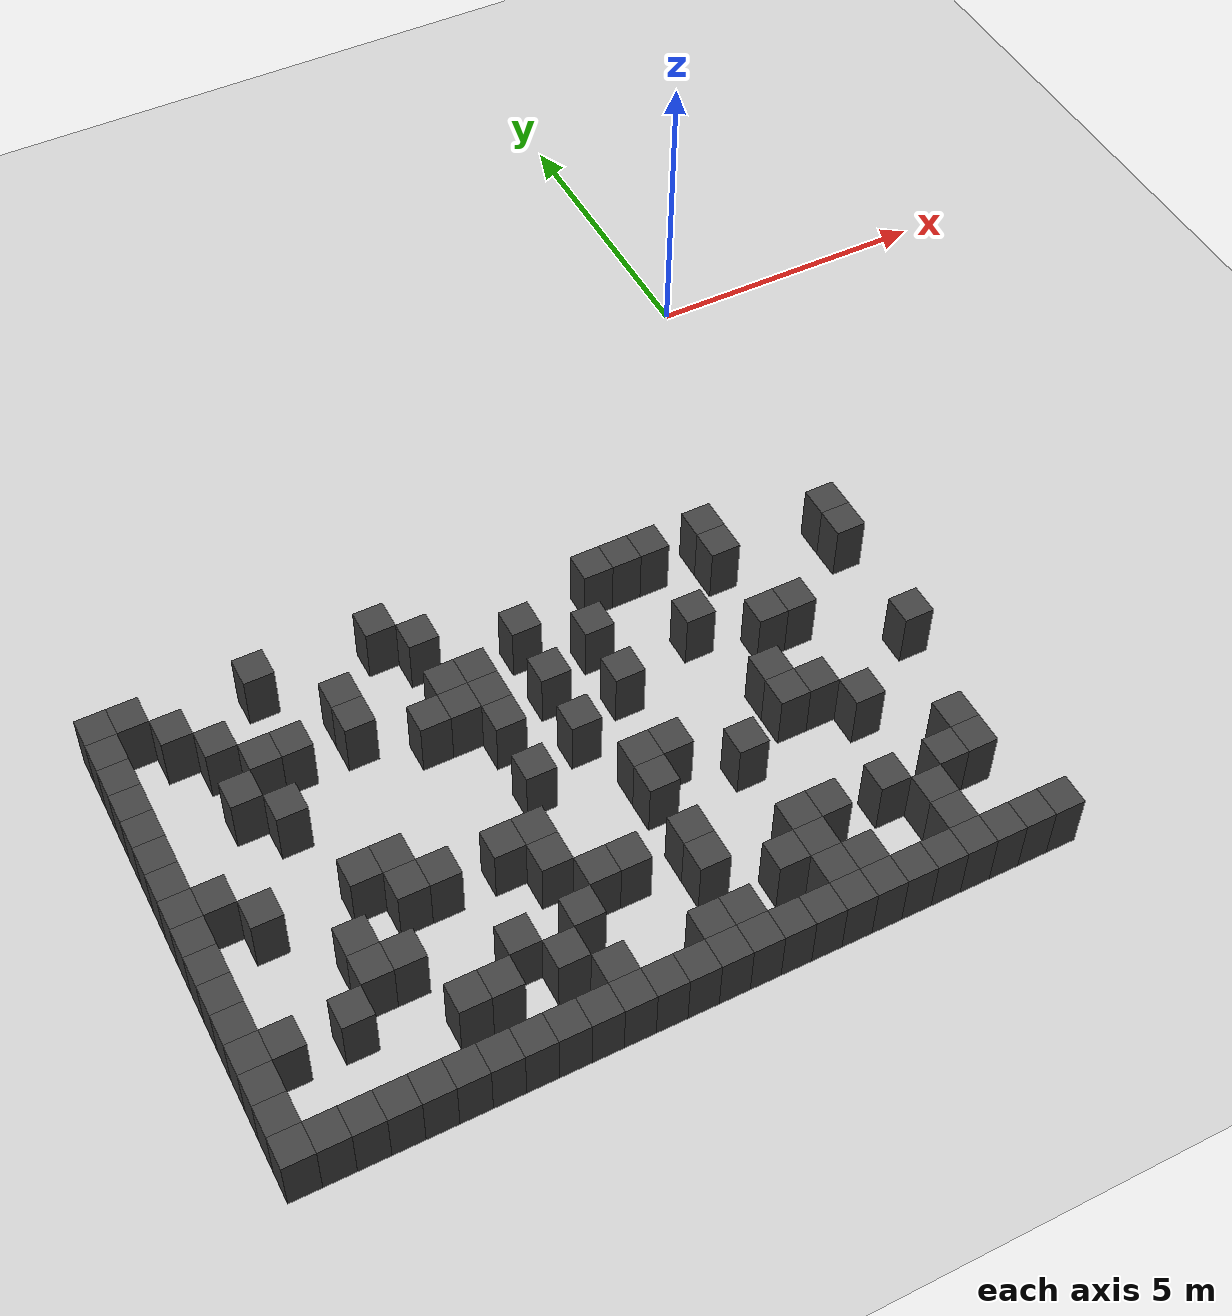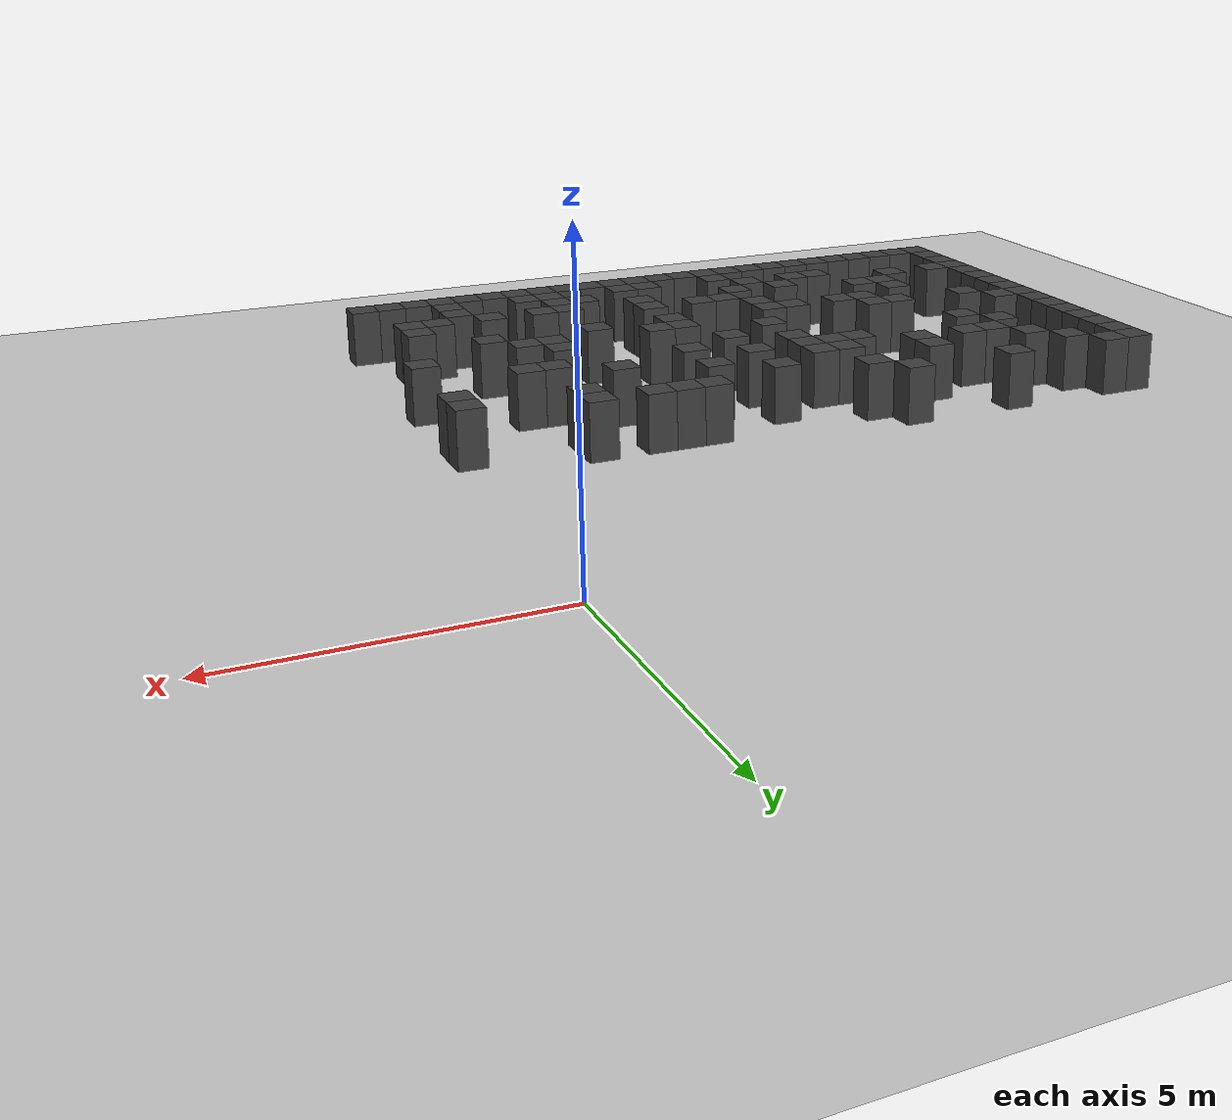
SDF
<sdf version="1.7">
 <world name="map_4822">
  <model name="ground_plane">
   <static>true</static>
   <link name="link">
    <collision name="collision">
     <geometry><plane><normal>0 0 1</normal><size>200 200</size></plane></geometry>
    </collision>
    <visual name="visual">
     <geometry><plane><normal>0 0 1</normal><size>200 200</size></plane></geometry>
     <material><ambient>0.8 0.8 0.8 1</ambient><diffuse>0.8 0.8 0.8 1</diffuse></material>
    </visual>
   </link>
  </model>
  <model name="maze_environment">
   <static>true</static>
   <link name="wall_477">
    <pose>-12.250 -4.750 0.500 0 0 0</pose>
    <collision name="col"><geometry><box><size>0.5 0.5 1.0</size></box></geometry></collision>
    <visual name="vis">
     <geometry><box><size>0.5 0.5 1.0</size></box></geometry>
     <material><ambient>0.15 0.15 0.15 1</ambient><diffuse>0.25 0.25 0.25 1</diffuse></material>
    </visual>
   </link>
   <link name="wall_478">
    <pose>-11.750 -4.750 0.500 0 0 0</pose>
    <collision name="col"><geometry><box><size>0.5 0.5 1.0</size></box></geometry></collision>
    <visual name="vis">
     <geometry><box><size>0.5 0.5 1.0</size></box></geometry>
     <material><ambient>0.15 0.15 0.15 1</ambient><diffuse>0.25 0.25 0.25 1</diffuse></material>
    </visual>
   </link>
   <link name="wall_479">
    <pose>-9.750 -4.750 0.500 0 0 0</pose>
    <collision name="col"><geometry><box><size>0.5 0.5 1.0</size></box></geometry></collision>
    <visual name="vis">
     <geometry><box><size>0.5 0.5 1.0</size></box></geometry>
     <material><ambient>0.15 0.15 0.15 1</ambient><diffuse>0.25 0.25 0.25 1</diffuse></material>
    </visual>
   </link>
   <link name="wall_480">
    <pose>-7.750 -4.750 0.500 0 0 0</pose>
    <collision name="col"><geometry><box><size>0.5 0.5 1.0</size></box></geometry></collision>
    <visual name="vis">
     <geometry><box><size>0.5 0.5 1.0</size></box></geometry>
     <material><ambient>0.15 0.15 0.15 1</ambient><diffuse>0.25 0.25 0.25 1</diffuse></material>
    </visual>
   </link>
   <link name="wall_491">
    <pose>-12.250 -5.250 0.500 0 0 0</pose>
    <collision name="col"><geometry><box><size>0.5 0.5 1.0</size></box></geometry></collision>
    <visual name="vis">
     <geometry><box><size>0.5 0.5 1.0</size></box></geometry>
     <material><ambient>0.15 0.15 0.15 1</ambient><diffuse>0.25 0.25 0.25 1</diffuse></material>
    </visual>
   </link>
   <link name="wall_492">
    <pose>-11.250 -5.250 0.500 0 0 0</pose>
    <collision name="col"><geometry><box><size>0.5 0.5 1.0</size></box></geometry></collision>
    <visual name="vis">
     <geometry><box><size>0.5 0.5 1.0</size></box></geometry>
     <material><ambient>0.15 0.15 0.15 1</ambient><diffuse>0.25 0.25 0.25 1</diffuse></material>
    </visual>
   </link>
   <link name="wall_493">
    <pose>-7.250 -5.250 0.500 0 0 0</pose>
    <collision name="col"><geometry><box><size>0.5 0.5 1.0</size></box></geometry></collision>
    <visual name="vis">
     <geometry><box><size>0.5 0.5 1.0</size></box></geometry>
     <material><ambient>0.15 0.15 0.15 1</ambient><diffuse>0.25 0.25 0.25 1</diffuse></material>
    </visual>
   </link>
   <link name="wall_494">
    <pose>-4.250 -5.250 0.500 0 0 0</pose>
    <collision name="col"><geometry><box><size>0.5 0.5 1.0</size></box></geometry></collision>
    <visual name="vis">
     <geometry><box><size>0.5 0.5 1.0</size></box></geometry>
     <material><ambient>0.15 0.15 0.15 1</ambient><diffuse>0.25 0.25 0.25 1</diffuse></material>
    </visual>
   </link>
   <link name="wall_495">
    <pose>-3.750 -5.250 0.500 0 0 0</pose>
    <collision name="col"><geometry><box><size>0.5 0.5 1.0</size></box></geometry></collision>
    <visual name="vis">
     <geometry><box><size>0.5 0.5 1.0</size></box></geometry>
     <material><ambient>0.15 0.15 0.15 1</ambient><diffuse>0.25 0.25 0.25 1</diffuse></material>
    </visual>
   </link>
   <link name="wall_496">
    <pose>-3.250 -5.250 0.500 0 0 0</pose>
    <collision name="col"><geometry><box><size>0.5 0.5 1.0</size></box></geometry></collision>
    <visual name="vis">
     <geometry><box><size>0.5 0.5 1.0</size></box></geometry>
     <material><ambient>0.15 0.15 0.15 1</ambient><diffuse>0.25 0.25 0.25 1</diffuse></material>
    </visual>
   </link>
   <link name="wall_497">
    <pose>-2.250 -5.250 0.500 0 0 0</pose>
    <collision name="col"><geometry><box><size>0.5 0.5 1.0</size></box></geometry></collision>
    <visual name="vis">
     <geometry><box><size>0.5 0.5 1.0</size></box></geometry>
     <material><ambient>0.15 0.15 0.15 1</ambient><diffuse>0.25 0.25 0.25 1</diffuse></material>
    </visual>
   </link>
   <link name="wall_502">
    <pose>-12.250 -5.750 0.500 0 0 0</pose>
    <collision name="col"><geometry><box><size>0.5 0.5 1.0</size></box></geometry></collision>
    <visual name="vis">
     <geometry><box><size>0.5 0.5 1.0</size></box></geometry>
     <material><ambient>0.15 0.15 0.15 1</ambient><diffuse>0.25 0.25 0.25 1</diffuse></material>
    </visual>
   </link>
   <link name="wall_503">
    <pose>-10.750 -5.750 0.500 0 0 0</pose>
    <collision name="col"><geometry><box><size>0.5 0.5 1.0</size></box></geometry></collision>
    <visual name="vis">
     <geometry><box><size>0.5 0.5 1.0</size></box></geometry>
     <material><ambient>0.15 0.15 0.15 1</ambient><diffuse>0.25 0.25 0.25 1</diffuse></material>
    </visual>
   </link>
   <link name="wall_504">
    <pose>-8.750 -5.750 0.500 0 0 0</pose>
    <collision name="col"><geometry><box><size>0.5 0.5 1.0</size></box></geometry></collision>
    <visual name="vis">
     <geometry><box><size>0.5 0.5 1.0</size></box></geometry>
     <material><ambient>0.15 0.15 0.15 1</ambient><diffuse>0.25 0.25 0.25 1</diffuse></material>
    </visual>
   </link>
   <link name="wall_505">
    <pose>-5.750 -5.750 0.500 0 0 0</pose>
    <collision name="col"><geometry><box><size>0.5 0.5 1.0</size></box></geometry></collision>
    <visual name="vis">
     <geometry><box><size>0.5 0.5 1.0</size></box></geometry>
     <material><ambient>0.15 0.15 0.15 1</ambient><diffuse>0.25 0.25 0.25 1</diffuse></material>
    </visual>
   </link>
   <link name="wall_506">
    <pose>-2.250 -5.750 0.500 0 0 0</pose>
    <collision name="col"><geometry><box><size>0.5 0.5 1.0</size></box></geometry></collision>
    <visual name="vis">
     <geometry><box><size>0.5 0.5 1.0</size></box></geometry>
     <material><ambient>0.15 0.15 0.15 1</ambient><diffuse>0.25 0.25 0.25 1</diffuse></material>
    </visual>
   </link>
   <link name="wall_507">
    <pose>-0.250 -5.750 0.500 0 0 0</pose>
    <collision name="col"><geometry><box><size>0.5 0.5 1.0</size></box></geometry></collision>
    <visual name="vis">
     <geometry><box><size>0.5 0.5 1.0</size></box></geometry>
     <material><ambient>0.15 0.15 0.15 1</ambient><diffuse>0.25 0.25 0.25 1</diffuse></material>
    </visual>
   </link>
   <link name="wall_513">
    <pose>-12.250 -6.250 0.500 0 0 0</pose>
    <collision name="col"><geometry><box><size>0.5 0.5 1.0</size></box></geometry></collision>
    <visual name="vis">
     <geometry><box><size>0.5 0.5 1.0</size></box></geometry>
     <material><ambient>0.15 0.15 0.15 1</ambient><diffuse>0.25 0.25 0.25 1</diffuse></material>
    </visual>
   </link>
   <link name="wall_514">
    <pose>-10.250 -6.250 0.500 0 0 0</pose>
    <collision name="col"><geometry><box><size>0.5 0.5 1.0</size></box></geometry></collision>
    <visual name="vis">
     <geometry><box><size>0.5 0.5 1.0</size></box></geometry>
     <material><ambient>0.15 0.15 0.15 1</ambient><diffuse>0.25 0.25 0.25 1</diffuse></material>
    </visual>
   </link>
   <link name="wall_515">
    <pose>-9.750 -6.250 0.500 0 0 0</pose>
    <collision name="col"><geometry><box><size>0.5 0.5 1.0</size></box></geometry></collision>
    <visual name="vis">
     <geometry><box><size>0.5 0.5 1.0</size></box></geometry>
     <material><ambient>0.15 0.15 0.15 1</ambient><diffuse>0.25 0.25 0.25 1</diffuse></material>
    </visual>
   </link>
   <link name="wall_516">
    <pose>-8.750 -6.250 0.500 0 0 0</pose>
    <collision name="col"><geometry><box><size>0.5 0.5 1.0</size></box></geometry></collision>
    <visual name="vis">
     <geometry><box><size>0.5 0.5 1.0</size></box></geometry>
     <material><ambient>0.15 0.15 0.15 1</ambient><diffuse>0.25 0.25 0.25 1</diffuse></material>
    </visual>
   </link>
   <link name="wall_517">
    <pose>-7.250 -6.250 0.500 0 0 0</pose>
    <collision name="col"><geometry><box><size>0.5 0.5 1.0</size></box></geometry></collision>
    <visual name="vis">
     <geometry><box><size>0.5 0.5 1.0</size></box></geometry>
     <material><ambient>0.15 0.15 0.15 1</ambient><diffuse>0.25 0.25 0.25 1</diffuse></material>
    </visual>
   </link>
   <link name="wall_518">
    <pose>-6.750 -6.250 0.500 0 0 0</pose>
    <collision name="col"><geometry><box><size>0.5 0.5 1.0</size></box></geometry></collision>
    <visual name="vis">
     <geometry><box><size>0.5 0.5 1.0</size></box></geometry>
     <material><ambient>0.15 0.15 0.15 1</ambient><diffuse>0.25 0.25 0.25 1</diffuse></material>
    </visual>
   </link>
   <link name="wall_519">
    <pose>-4.750 -6.250 0.500 0 0 0</pose>
    <collision name="col"><geometry><box><size>0.5 0.5 1.0</size></box></geometry></collision>
    <visual name="vis">
     <geometry><box><size>0.5 0.5 1.0</size></box></geometry>
     <material><ambient>0.15 0.15 0.15 1</ambient><diffuse>0.25 0.25 0.25 1</diffuse></material>
    </visual>
   </link>
   <link name="wall_520">
    <pose>-0.250 -6.250 0.500 0 0 0</pose>
    <collision name="col"><geometry><box><size>0.5 0.5 1.0</size></box></geometry></collision>
    <visual name="vis">
     <geometry><box><size>0.5 0.5 1.0</size></box></geometry>
     <material><ambient>0.15 0.15 0.15 1</ambient><diffuse>0.25 0.25 0.25 1</diffuse></material>
    </visual>
   </link>
   <link name="wall_526">
    <pose>-12.250 -6.750 0.500 0 0 0</pose>
    <collision name="col"><geometry><box><size>0.5 0.5 1.0</size></box></geometry></collision>
    <visual name="vis">
     <geometry><box><size>0.5 0.5 1.0</size></box></geometry>
     <material><ambient>0.15 0.15 0.15 1</ambient><diffuse>0.25 0.25 0.25 1</diffuse></material>
    </visual>
   </link>
   <link name="wall_527">
    <pose>-10.750 -6.750 0.500 0 0 0</pose>
    <collision name="col"><geometry><box><size>0.5 0.5 1.0</size></box></geometry></collision>
    <visual name="vis">
     <geometry><box><size>0.5 0.5 1.0</size></box></geometry>
     <material><ambient>0.15 0.15 0.15 1</ambient><diffuse>0.25 0.25 0.25 1</diffuse></material>
    </visual>
   </link>
   <link name="wall_528">
    <pose>-7.750 -6.750 0.500 0 0 0</pose>
    <collision name="col"><geometry><box><size>0.5 0.5 1.0</size></box></geometry></collision>
    <visual name="vis">
     <geometry><box><size>0.5 0.5 1.0</size></box></geometry>
     <material><ambient>0.15 0.15 0.15 1</ambient><diffuse>0.25 0.25 0.25 1</diffuse></material>
    </visual>
   </link>
   <link name="wall_529">
    <pose>-7.250 -6.750 0.500 0 0 0</pose>
    <collision name="col"><geometry><box><size>0.5 0.5 1.0</size></box></geometry></collision>
    <visual name="vis">
     <geometry><box><size>0.5 0.5 1.0</size></box></geometry>
     <material><ambient>0.15 0.15 0.15 1</ambient><diffuse>0.25 0.25 0.25 1</diffuse></material>
    </visual>
   </link>
   <link name="wall_530">
    <pose>-6.750 -6.750 0.500 0 0 0</pose>
    <collision name="col"><geometry><box><size>0.5 0.5 1.0</size></box></geometry></collision>
    <visual name="vis">
     <geometry><box><size>0.5 0.5 1.0</size></box></geometry>
     <material><ambient>0.15 0.15 0.15 1</ambient><diffuse>0.25 0.25 0.25 1</diffuse></material>
    </visual>
   </link>
   <link name="wall_531">
    <pose>-5.750 -6.750 0.500 0 0 0</pose>
    <collision name="col"><geometry><box><size>0.5 0.5 1.0</size></box></geometry></collision>
    <visual name="vis">
     <geometry><box><size>0.5 0.5 1.0</size></box></geometry>
     <material><ambient>0.15 0.15 0.15 1</ambient><diffuse>0.25 0.25 0.25 1</diffuse></material>
    </visual>
   </link>
   <link name="wall_532">
    <pose>-3.250 -6.750 0.500 0 0 0</pose>
    <collision name="col"><geometry><box><size>0.5 0.5 1.0</size></box></geometry></collision>
    <visual name="vis">
     <geometry><box><size>0.5 0.5 1.0</size></box></geometry>
     <material><ambient>0.15 0.15 0.15 1</ambient><diffuse>0.25 0.25 0.25 1</diffuse></material>
    </visual>
   </link>
   <link name="wall_540">
    <pose>-12.250 -7.250 0.500 0 0 0</pose>
    <collision name="col"><geometry><box><size>0.5 0.5 1.0</size></box></geometry></collision>
    <visual name="vis">
     <geometry><box><size>0.5 0.5 1.0</size></box></geometry>
     <material><ambient>0.15 0.15 0.15 1</ambient><diffuse>0.25 0.25 0.25 1</diffuse></material>
    </visual>
   </link>
   <link name="wall_541">
    <pose>-10.250 -7.250 0.500 0 0 0</pose>
    <collision name="col"><geometry><box><size>0.5 0.5 1.0</size></box></geometry></collision>
    <visual name="vis">
     <geometry><box><size>0.5 0.5 1.0</size></box></geometry>
     <material><ambient>0.15 0.15 0.15 1</ambient><diffuse>0.25 0.25 0.25 1</diffuse></material>
    </visual>
   </link>
   <link name="wall_542">
    <pose>-6.750 -7.250 0.500 0 0 0</pose>
    <collision name="col"><geometry><box><size>0.5 0.5 1.0</size></box></geometry></collision>
    <visual name="vis">
     <geometry><box><size>0.5 0.5 1.0</size></box></geometry>
     <material><ambient>0.15 0.15 0.15 1</ambient><diffuse>0.25 0.25 0.25 1</diffuse></material>
    </visual>
   </link>
   <link name="wall_543">
    <pose>-4.750 -7.250 0.500 0 0 0</pose>
    <collision name="col"><geometry><box><size>0.5 0.5 1.0</size></box></geometry></collision>
    <visual name="vis">
     <geometry><box><size>0.5 0.5 1.0</size></box></geometry>
     <material><ambient>0.15 0.15 0.15 1</ambient><diffuse>0.25 0.25 0.25 1</diffuse></material>
    </visual>
   </link>
   <link name="wall_544">
    <pose>-2.250 -7.250 0.500 0 0 0</pose>
    <collision name="col"><geometry><box><size>0.5 0.5 1.0</size></box></geometry></collision>
    <visual name="vis">
     <geometry><box><size>0.5 0.5 1.0</size></box></geometry>
     <material><ambient>0.15 0.15 0.15 1</ambient><diffuse>0.25 0.25 0.25 1</diffuse></material>
    </visual>
   </link>
   <link name="wall_545">
    <pose>-1.750 -7.250 0.500 0 0 0</pose>
    <collision name="col"><geometry><box><size>0.5 0.5 1.0</size></box></geometry></collision>
    <visual name="vis">
     <geometry><box><size>0.5 0.5 1.0</size></box></geometry>
     <material><ambient>0.15 0.15 0.15 1</ambient><diffuse>0.25 0.25 0.25 1</diffuse></material>
    </visual>
   </link>
   <link name="wall_553">
    <pose>-12.250 -7.750 0.500 0 0 0</pose>
    <collision name="col"><geometry><box><size>0.5 0.5 1.0</size></box></geometry></collision>
    <visual name="vis">
     <geometry><box><size>0.5 0.5 1.0</size></box></geometry>
     <material><ambient>0.15 0.15 0.15 1</ambient><diffuse>0.25 0.25 0.25 1</diffuse></material>
    </visual>
   </link>
   <link name="wall_554">
    <pose>-5.750 -7.750 0.500 0 0 0</pose>
    <collision name="col"><geometry><box><size>0.5 0.5 1.0</size></box></geometry></collision>
    <visual name="vis">
     <geometry><box><size>0.5 0.5 1.0</size></box></geometry>
     <material><ambient>0.15 0.15 0.15 1</ambient><diffuse>0.25 0.25 0.25 1</diffuse></material>
    </visual>
   </link>
   <link name="wall_561">
    <pose>-12.250 -8.250 0.500 0 0 0</pose>
    <collision name="col"><geometry><box><size>0.5 0.5 1.0</size></box></geometry></collision>
    <visual name="vis">
     <geometry><box><size>0.5 0.5 1.0</size></box></geometry>
     <material><ambient>0.15 0.15 0.15 1</ambient><diffuse>0.25 0.25 0.25 1</diffuse></material>
    </visual>
   </link>
   <link name="wall_562">
    <pose>-11.750 -8.250 0.500 0 0 0</pose>
    <collision name="col"><geometry><box><size>0.5 0.5 1.0</size></box></geometry></collision>
    <visual name="vis">
     <geometry><box><size>0.5 0.5 1.0</size></box></geometry>
     <material><ambient>0.15 0.15 0.15 1</ambient><diffuse>0.25 0.25 0.25 1</diffuse></material>
    </visual>
   </link>
   <link name="wall_563">
    <pose>-6.750 -8.250 0.500 0 0 0</pose>
    <collision name="col"><geometry><box><size>0.5 0.5 1.0</size></box></geometry></collision>
    <visual name="vis">
     <geometry><box><size>0.5 0.5 1.0</size></box></geometry>
     <material><ambient>0.15 0.15 0.15 1</ambient><diffuse>0.25 0.25 0.25 1</diffuse></material>
    </visual>
   </link>
   <link name="wall_564">
    <pose>-2.750 -8.250 0.500 0 0 0</pose>
    <collision name="col"><geometry><box><size>0.5 0.5 1.0</size></box></geometry></collision>
    <visual name="vis">
     <geometry><box><size>0.5 0.5 1.0</size></box></geometry>
     <material><ambient>0.15 0.15 0.15 1</ambient><diffuse>0.25 0.25 0.25 1</diffuse></material>
    </visual>
   </link>
   <link name="wall_565">
    <pose>-0.250 -8.250 0.500 0 0 0</pose>
    <collision name="col"><geometry><box><size>0.5 0.5 1.0</size></box></geometry></collision>
    <visual name="vis">
     <geometry><box><size>0.5 0.5 1.0</size></box></geometry>
     <material><ambient>0.15 0.15 0.15 1</ambient><diffuse>0.25 0.25 0.25 1</diffuse></material>
    </visual>
   </link>
   <link name="wall_572">
    <pose>-12.250 -8.750 0.500 0 0 0</pose>
    <collision name="col"><geometry><box><size>0.5 0.5 1.0</size></box></geometry></collision>
    <visual name="vis">
     <geometry><box><size>0.5 0.5 1.0</size></box></geometry>
     <material><ambient>0.15 0.15 0.15 1</ambient><diffuse>0.25 0.25 0.25 1</diffuse></material>
    </visual>
   </link>
   <link name="wall_573">
    <pose>-11.250 -8.750 0.500 0 0 0</pose>
    <collision name="col"><geometry><box><size>0.5 0.5 1.0</size></box></geometry></collision>
    <visual name="vis">
     <geometry><box><size>0.5 0.5 1.0</size></box></geometry>
     <material><ambient>0.15 0.15 0.15 1</ambient><diffuse>0.25 0.25 0.25 1</diffuse></material>
    </visual>
   </link>
   <link name="wall_574">
    <pose>-9.750 -8.750 0.500 0 0 0</pose>
    <collision name="col"><geometry><box><size>0.5 0.5 1.0</size></box></geometry></collision>
    <visual name="vis">
     <geometry><box><size>0.5 0.5 1.0</size></box></geometry>
     <material><ambient>0.15 0.15 0.15 1</ambient><diffuse>0.25 0.25 0.25 1</diffuse></material>
    </visual>
   </link>
   <link name="wall_575">
    <pose>-9.250 -8.750 0.500 0 0 0</pose>
    <collision name="col"><geometry><box><size>0.5 0.5 1.0</size></box></geometry></collision>
    <visual name="vis">
     <geometry><box><size>0.5 0.5 1.0</size></box></geometry>
     <material><ambient>0.15 0.15 0.15 1</ambient><diffuse>0.25 0.25 0.25 1</diffuse></material>
    </visual>
   </link>
   <link name="wall_576">
    <pose>-5.250 -8.750 0.500 0 0 0</pose>
    <collision name="col"><geometry><box><size>0.5 0.5 1.0</size></box></geometry></collision>
    <visual name="vis">
     <geometry><box><size>0.5 0.5 1.0</size></box></geometry>
     <material><ambient>0.15 0.15 0.15 1</ambient><diffuse>0.25 0.25 0.25 1</diffuse></material>
    </visual>
   </link>
   <link name="wall_577">
    <pose>-4.750 -8.750 0.500 0 0 0</pose>
    <collision name="col"><geometry><box><size>0.5 0.5 1.0</size></box></geometry></collision>
    <visual name="vis">
     <geometry><box><size>0.5 0.5 1.0</size></box></geometry>
     <material><ambient>0.15 0.15 0.15 1</ambient><diffuse>0.25 0.25 0.25 1</diffuse></material>
    </visual>
   </link>
   <link name="wall_578">
    <pose>-2.750 -8.750 0.500 0 0 0</pose>
    <collision name="col"><geometry><box><size>0.5 0.5 1.0</size></box></geometry></collision>
    <visual name="vis">
     <geometry><box><size>0.5 0.5 1.0</size></box></geometry>
     <material><ambient>0.15 0.15 0.15 1</ambient><diffuse>0.25 0.25 0.25 1</diffuse></material>
    </visual>
   </link>
   <link name="wall_579">
    <pose>-2.250 -8.750 0.500 0 0 0</pose>
    <collision name="col"><geometry><box><size>0.5 0.5 1.0</size></box></geometry></collision>
    <visual name="vis">
     <geometry><box><size>0.5 0.5 1.0</size></box></geometry>
     <material><ambient>0.15 0.15 0.15 1</ambient><diffuse>0.25 0.25 0.25 1</diffuse></material>
    </visual>
   </link>
   <link name="wall_590">
    <pose>-12.250 -9.250 0.500 0 0 0</pose>
    <collision name="col"><geometry><box><size>0.5 0.5 1.0</size></box></geometry></collision>
    <visual name="vis">
     <geometry><box><size>0.5 0.5 1.0</size></box></geometry>
     <material><ambient>0.15 0.15 0.15 1</ambient><diffuse>0.25 0.25 0.25 1</diffuse></material>
    </visual>
   </link>
   <link name="wall_591">
    <pose>-9.250 -9.250 0.500 0 0 0</pose>
    <collision name="col"><geometry><box><size>0.5 0.5 1.0</size></box></geometry></collision>
    <visual name="vis">
     <geometry><box><size>0.5 0.5 1.0</size></box></geometry>
     <material><ambient>0.15 0.15 0.15 1</ambient><diffuse>0.25 0.25 0.25 1</diffuse></material>
    </visual>
   </link>
   <link name="wall_592">
    <pose>-8.750 -9.250 0.500 0 0 0</pose>
    <collision name="col"><geometry><box><size>0.5 0.5 1.0</size></box></geometry></collision>
    <visual name="vis">
     <geometry><box><size>0.5 0.5 1.0</size></box></geometry>
     <material><ambient>0.15 0.15 0.15 1</ambient><diffuse>0.25 0.25 0.25 1</diffuse></material>
    </visual>
   </link>
   <link name="wall_593">
    <pose>-7.750 -9.250 0.500 0 0 0</pose>
    <collision name="col"><geometry><box><size>0.5 0.5 1.0</size></box></geometry></collision>
    <visual name="vis">
     <geometry><box><size>0.5 0.5 1.0</size></box></geometry>
     <material><ambient>0.15 0.15 0.15 1</ambient><diffuse>0.25 0.25 0.25 1</diffuse></material>
    </visual>
   </link>
   <link name="wall_594">
    <pose>-7.250 -9.250 0.500 0 0 0</pose>
    <collision name="col"><geometry><box><size>0.5 0.5 1.0</size></box></geometry></collision>
    <visual name="vis">
     <geometry><box><size>0.5 0.5 1.0</size></box></geometry>
     <material><ambient>0.15 0.15 0.15 1</ambient><diffuse>0.25 0.25 0.25 1</diffuse></material>
    </visual>
   </link>
   <link name="wall_595">
    <pose>-5.250 -9.250 0.500 0 0 0</pose>
    <collision name="col"><geometry><box><size>0.5 0.5 1.0</size></box></geometry></collision>
    <visual name="vis">
     <geometry><box><size>0.5 0.5 1.0</size></box></geometry>
     <material><ambient>0.15 0.15 0.15 1</ambient><diffuse>0.25 0.25 0.25 1</diffuse></material>
    </visual>
   </link>
   <link name="wall_596">
    <pose>-3.750 -9.250 0.500 0 0 0</pose>
    <collision name="col"><geometry><box><size>0.5 0.5 1.0</size></box></geometry></collision>
    <visual name="vis">
     <geometry><box><size>0.5 0.5 1.0</size></box></geometry>
     <material><ambient>0.15 0.15 0.15 1</ambient><diffuse>0.25 0.25 0.25 1</diffuse></material>
    </visual>
   </link>
   <link name="wall_597">
    <pose>-1.750 -9.250 0.500 0 0 0</pose>
    <collision name="col"><geometry><box><size>0.5 0.5 1.0</size></box></geometry></collision>
    <visual name="vis">
     <geometry><box><size>0.5 0.5 1.0</size></box></geometry>
     <material><ambient>0.15 0.15 0.15 1</ambient><diffuse>0.25 0.25 0.25 1</diffuse></material>
    </visual>
   </link>
   <link name="wall_603">
    <pose>-12.250 -9.750 0.500 0 0 0</pose>
    <collision name="col"><geometry><box><size>0.5 0.5 1.0</size></box></geometry></collision>
    <visual name="vis">
     <geometry><box><size>0.5 0.5 1.0</size></box></geometry>
     <material><ambient>0.15 0.15 0.15 1</ambient><diffuse>0.25 0.25 0.25 1</diffuse></material>
    </visual>
   </link>
   <link name="wall_604">
    <pose>-10.250 -9.750 0.500 0 0 0</pose>
    <collision name="col"><geometry><box><size>0.5 0.5 1.0</size></box></geometry></collision>
    <visual name="vis">
     <geometry><box><size>0.5 0.5 1.0</size></box></geometry>
     <material><ambient>0.15 0.15 0.15 1</ambient><diffuse>0.25 0.25 0.25 1</diffuse></material>
    </visual>
   </link>
   <link name="wall_605">
    <pose>-7.250 -9.750 0.500 0 0 0</pose>
    <collision name="col"><geometry><box><size>0.5 0.5 1.0</size></box></geometry></collision>
    <visual name="vis">
     <geometry><box><size>0.5 0.5 1.0</size></box></geometry>
     <material><ambient>0.15 0.15 0.15 1</ambient><diffuse>0.25 0.25 0.25 1</diffuse></material>
    </visual>
   </link>
   <link name="wall_612">
    <pose>-12.250 -10.250 0.500 0 0 0</pose>
    <collision name="col"><geometry><box><size>0.5 0.5 1.0</size></box></geometry></collision>
    <visual name="vis">
     <geometry><box><size>0.5 0.5 1.0</size></box></geometry>
     <material><ambient>0.15 0.15 0.15 1</ambient><diffuse>0.25 0.25 0.25 1</diffuse></material>
    </visual>
   </link>
   <link name="wall_613">
    <pose>-10.250 -10.250 0.500 0 0 0</pose>
    <collision name="col"><geometry><box><size>0.5 0.5 1.0</size></box></geometry></collision>
    <visual name="vis">
     <geometry><box><size>0.5 0.5 1.0</size></box></geometry>
     <material><ambient>0.15 0.15 0.15 1</ambient><diffuse>0.25 0.25 0.25 1</diffuse></material>
    </visual>
   </link>
   <link name="wall_614">
    <pose>-9.750 -10.250 0.500 0 0 0</pose>
    <collision name="col"><geometry><box><size>0.5 0.5 1.0</size></box></geometry></collision>
    <visual name="vis">
     <geometry><box><size>0.5 0.5 1.0</size></box></geometry>
     <material><ambient>0.15 0.15 0.15 1</ambient><diffuse>0.25 0.25 0.25 1</diffuse></material>
    </visual>
   </link>
   <link name="wall_615">
    <pose>-6.750 -10.250 0.500 0 0 0</pose>
    <collision name="col"><geometry><box><size>0.5 0.5 1.0</size></box></geometry></collision>
    <visual name="vis">
     <geometry><box><size>0.5 0.5 1.0</size></box></geometry>
     <material><ambient>0.15 0.15 0.15 1</ambient><diffuse>0.25 0.25 0.25 1</diffuse></material>
    </visual>
   </link>
   <link name="wall_616">
    <pose>-6.250 -10.250 0.500 0 0 0</pose>
    <collision name="col"><geometry><box><size>0.5 0.5 1.0</size></box></geometry></collision>
    <visual name="vis">
     <geometry><box><size>0.5 0.5 1.0</size></box></geometry>
     <material><ambient>0.15 0.15 0.15 1</ambient><diffuse>0.25 0.25 0.25 1</diffuse></material>
    </visual>
   </link>
   <link name="wall_617">
    <pose>-5.250 -10.250 0.500 0 0 0</pose>
    <collision name="col"><geometry><box><size>0.5 0.5 1.0</size></box></geometry></collision>
    <visual name="vis">
     <geometry><box><size>0.5 0.5 1.0</size></box></geometry>
     <material><ambient>0.15 0.15 0.15 1</ambient><diffuse>0.25 0.25 0.25 1</diffuse></material>
    </visual>
   </link>
   <link name="wall_618">
    <pose>-0.750 -10.250 0.500 0 0 0</pose>
    <collision name="col"><geometry><box><size>0.5 0.5 1.0</size></box></geometry></collision>
    <visual name="vis">
     <geometry><box><size>0.5 0.5 1.0</size></box></geometry>
     <material><ambient>0.15 0.15 0.15 1</ambient><diffuse>0.25 0.25 0.25 1</diffuse></material>
    </visual>
   </link>
   <link name="wall_627">
    <pose>-12.250 -10.750 0.500 0 0 0</pose>
    <collision name="col"><geometry><box><size>0.5 0.5 1.0</size></box></geometry></collision>
    <visual name="vis">
     <geometry><box><size>0.5 0.5 1.0</size></box></geometry>
     <material><ambient>0.15 0.15 0.15 1</ambient><diffuse>0.25 0.25 0.25 1</diffuse></material>
    </visual>
   </link>
   <link name="wall_628">
    <pose>-11.750 -10.750 0.500 0 0 0</pose>
    <collision name="col"><geometry><box><size>0.5 0.5 1.0</size></box></geometry></collision>
    <visual name="vis">
     <geometry><box><size>0.5 0.5 1.0</size></box></geometry>
     <material><ambient>0.15 0.15 0.15 1</ambient><diffuse>0.25 0.25 0.25 1</diffuse></material>
    </visual>
   </link>
   <link name="wall_629">
    <pose>-10.750 -10.750 0.500 0 0 0</pose>
    <collision name="col"><geometry><box><size>0.5 0.5 1.0</size></box></geometry></collision>
    <visual name="vis">
     <geometry><box><size>0.5 0.5 1.0</size></box></geometry>
     <material><ambient>0.15 0.15 0.15 1</ambient><diffuse>0.25 0.25 0.25 1</diffuse></material>
    </visual>
   </link>
   <link name="wall_630">
    <pose>-8.250 -10.750 0.500 0 0 0</pose>
    <collision name="col"><geometry><box><size>0.5 0.5 1.0</size></box></geometry></collision>
    <visual name="vis">
     <geometry><box><size>0.5 0.5 1.0</size></box></geometry>
     <material><ambient>0.15 0.15 0.15 1</ambient><diffuse>0.25 0.25 0.25 1</diffuse></material>
    </visual>
   </link>
   <link name="wall_631">
    <pose>-7.250 -10.750 0.500 0 0 0</pose>
    <collision name="col"><geometry><box><size>0.5 0.5 1.0</size></box></geometry></collision>
    <visual name="vis">
     <geometry><box><size>0.5 0.5 1.0</size></box></geometry>
     <material><ambient>0.15 0.15 0.15 1</ambient><diffuse>0.25 0.25 0.25 1</diffuse></material>
    </visual>
   </link>
   <link name="wall_632">
    <pose>-5.250 -10.750 0.500 0 0 0</pose>
    <collision name="col"><geometry><box><size>0.5 0.5 1.0</size></box></geometry></collision>
    <visual name="vis">
     <geometry><box><size>0.5 0.5 1.0</size></box></geometry>
     <material><ambient>0.15 0.15 0.15 1</ambient><diffuse>0.25 0.25 0.25 1</diffuse></material>
    </visual>
   </link>
   <link name="wall_633">
    <pose>-3.750 -10.750 0.500 0 0 0</pose>
    <collision name="col"><geometry><box><size>0.5 0.5 1.0</size></box></geometry></collision>
    <visual name="vis">
     <geometry><box><size>0.5 0.5 1.0</size></box></geometry>
     <material><ambient>0.15 0.15 0.15 1</ambient><diffuse>0.25 0.25 0.25 1</diffuse></material>
    </visual>
   </link>
   <link name="wall_634">
    <pose>-3.250 -10.750 0.500 0 0 0</pose>
    <collision name="col"><geometry><box><size>0.5 0.5 1.0</size></box></geometry></collision>
    <visual name="vis">
     <geometry><box><size>0.5 0.5 1.0</size></box></geometry>
     <material><ambient>0.15 0.15 0.15 1</ambient><diffuse>0.25 0.25 0.25 1</diffuse></material>
    </visual>
   </link>
   <link name="wall_635">
    <pose>-2.250 -10.750 0.500 0 0 0</pose>
    <collision name="col"><geometry><box><size>0.5 0.5 1.0</size></box></geometry></collision>
    <visual name="vis">
     <geometry><box><size>0.5 0.5 1.0</size></box></geometry>
     <material><ambient>0.15 0.15 0.15 1</ambient><diffuse>0.25 0.25 0.25 1</diffuse></material>
    </visual>
   </link>
   <link name="wall_636">
    <pose>-1.250 -10.750 0.500 0 0 0</pose>
    <collision name="col"><geometry><box><size>0.5 0.5 1.0</size></box></geometry></collision>
    <visual name="vis">
     <geometry><box><size>0.5 0.5 1.0</size></box></geometry>
     <material><ambient>0.15 0.15 0.15 1</ambient><diffuse>0.25 0.25 0.25 1</diffuse></material>
    </visual>
   </link>
   <link name="wall_637">
    <pose>-0.750 -10.750 0.500 0 0 0</pose>
    <collision name="col"><geometry><box><size>0.5 0.5 1.0</size></box></geometry></collision>
    <visual name="vis">
     <geometry><box><size>0.5 0.5 1.0</size></box></geometry>
     <material><ambient>0.15 0.15 0.15 1</ambient><diffuse>0.25 0.25 0.25 1</diffuse></material>
    </visual>
   </link>
   <link name="wall_646">
    <pose>-12.250 -11.250 0.500 0 0 0</pose>
    <collision name="col"><geometry><box><size>0.5 0.5 1.0</size></box></geometry></collision>
    <visual name="vis">
     <geometry><box><size>0.5 0.5 1.0</size></box></geometry>
     <material><ambient>0.15 0.15 0.15 1</ambient><diffuse>0.25 0.25 0.25 1</diffuse></material>
    </visual>
   </link>
   <link name="wall_647">
    <pose>-9.250 -11.250 0.500 0 0 0</pose>
    <collision name="col"><geometry><box><size>0.5 0.5 1.0</size></box></geometry></collision>
    <visual name="vis">
     <geometry><box><size>0.5 0.5 1.0</size></box></geometry>
     <material><ambient>0.15 0.15 0.15 1</ambient><diffuse>0.25 0.25 0.25 1</diffuse></material>
    </visual>
   </link>
   <link name="wall_648">
    <pose>-8.750 -11.250 0.500 0 0 0</pose>
    <collision name="col"><geometry><box><size>0.5 0.5 1.0</size></box></geometry></collision>
    <visual name="vis">
     <geometry><box><size>0.5 0.5 1.0</size></box></geometry>
     <material><ambient>0.15 0.15 0.15 1</ambient><diffuse>0.25 0.25 0.25 1</diffuse></material>
    </visual>
   </link>
   <link name="wall_649">
    <pose>-7.750 -11.250 0.500 0 0 0</pose>
    <collision name="col"><geometry><box><size>0.5 0.5 1.0</size></box></geometry></collision>
    <visual name="vis">
     <geometry><box><size>0.5 0.5 1.0</size></box></geometry>
     <material><ambient>0.15 0.15 0.15 1</ambient><diffuse>0.25 0.25 0.25 1</diffuse></material>
    </visual>
   </link>
   <link name="wall_650">
    <pose>-4.250 -11.250 0.500 0 0 0</pose>
    <collision name="col"><geometry><box><size>0.5 0.5 1.0</size></box></geometry></collision>
    <visual name="vis">
     <geometry><box><size>0.5 0.5 1.0</size></box></geometry>
     <material><ambient>0.15 0.15 0.15 1</ambient><diffuse>0.25 0.25 0.25 1</diffuse></material>
    </visual>
   </link>
   <link name="wall_651">
    <pose>-3.750 -11.250 0.500 0 0 0</pose>
    <collision name="col"><geometry><box><size>0.5 0.5 1.0</size></box></geometry></collision>
    <visual name="vis">
     <geometry><box><size>0.5 0.5 1.0</size></box></geometry>
     <material><ambient>0.15 0.15 0.15 1</ambient><diffuse>0.25 0.25 0.25 1</diffuse></material>
    </visual>
   </link>
   <link name="wall_652">
    <pose>-1.750 -11.250 0.500 0 0 0</pose>
    <collision name="col"><geometry><box><size>0.5 0.5 1.0</size></box></geometry></collision>
    <visual name="vis">
     <geometry><box><size>0.5 0.5 1.0</size></box></geometry>
     <material><ambient>0.15 0.15 0.15 1</ambient><diffuse>0.25 0.25 0.25 1</diffuse></material>
    </visual>
   </link>
   <link name="wall_660">
    <pose>-12.250 -11.750 0.500 0 0 0</pose>
    <collision name="col"><geometry><box><size>0.5 0.5 1.0</size></box></geometry></collision>
    <visual name="vis">
     <geometry><box><size>0.5 0.5 1.0</size></box></geometry>
     <material><ambient>0.15 0.15 0.15 1</ambient><diffuse>0.25 0.25 0.25 1</diffuse></material>
    </visual>
   </link>
   <link name="wall_661">
    <pose>-7.250 -11.750 0.500 0 0 0</pose>
    <collision name="col"><geometry><box><size>0.5 0.5 1.0</size></box></geometry></collision>
    <visual name="vis">
     <geometry><box><size>0.5 0.5 1.0</size></box></geometry>
     <material><ambient>0.15 0.15 0.15 1</ambient><diffuse>0.25 0.25 0.25 1</diffuse></material>
    </visual>
   </link>
   <link name="wall_662">
    <pose>-5.750 -11.750 0.500 0 0 0</pose>
    <collision name="col"><geometry><box><size>0.5 0.5 1.0</size></box></geometry></collision>
    <visual name="vis">
     <geometry><box><size>0.5 0.5 1.0</size></box></geometry>
     <material><ambient>0.15 0.15 0.15 1</ambient><diffuse>0.25 0.25 0.25 1</diffuse></material>
    </visual>
   </link>
   <link name="wall_663">
    <pose>-5.250 -11.750 0.500 0 0 0</pose>
    <collision name="col"><geometry><box><size>0.5 0.5 1.0</size></box></geometry></collision>
    <visual name="vis">
     <geometry><box><size>0.5 0.5 1.0</size></box></geometry>
     <material><ambient>0.15 0.15 0.15 1</ambient><diffuse>0.25 0.25 0.25 1</diffuse></material>
    </visual>
   </link>
   <link name="wall_664">
    <pose>-3.750 -11.750 0.500 0 0 0</pose>
    <collision name="col"><geometry><box><size>0.5 0.5 1.0</size></box></geometry></collision>
    <visual name="vis">
     <geometry><box><size>0.5 0.5 1.0</size></box></geometry>
     <material><ambient>0.15 0.15 0.15 1</ambient><diffuse>0.25 0.25 0.25 1</diffuse></material>
    </visual>
   </link>
   <link name="wall_665">
    <pose>-3.250 -11.750 0.500 0 0 0</pose>
    <collision name="col"><geometry><box><size>0.5 0.5 1.0</size></box></geometry></collision>
    <visual name="vis">
     <geometry><box><size>0.5 0.5 1.0</size></box></geometry>
     <material><ambient>0.15 0.15 0.15 1</ambient><diffuse>0.25 0.25 0.25 1</diffuse></material>
    </visual>
   </link>
   <link name="wall_666">
    <pose>-1.750 -11.750 0.500 0 0 0</pose>
    <collision name="col"><geometry><box><size>0.5 0.5 1.0</size></box></geometry></collision>
    <visual name="vis">
     <geometry><box><size>0.5 0.5 1.0</size></box></geometry>
     <material><ambient>0.15 0.15 0.15 1</ambient><diffuse>0.25 0.25 0.25 1</diffuse></material>
    </visual>
   </link>
   <link name="wall_676">
    <pose>-12.250 -12.250 0.500 0 0 0</pose>
    <collision name="col"><geometry><box><size>0.5 0.5 1.0</size></box></geometry></collision>
    <visual name="vis">
     <geometry><box><size>0.5 0.5 1.0</size></box></geometry>
     <material><ambient>0.15 0.15 0.15 1</ambient><diffuse>0.25 0.25 0.25 1</diffuse></material>
    </visual>
   </link>
   <link name="wall_677">
    <pose>-11.750 -12.250 0.500 0 0 0</pose>
    <collision name="col"><geometry><box><size>0.5 0.5 1.0</size></box></geometry></collision>
    <visual name="vis">
     <geometry><box><size>0.5 0.5 1.0</size></box></geometry>
     <material><ambient>0.15 0.15 0.15 1</ambient><diffuse>0.25 0.25 0.25 1</diffuse></material>
    </visual>
   </link>
   <link name="wall_678">
    <pose>-11.250 -12.250 0.500 0 0 0</pose>
    <collision name="col"><geometry><box><size>0.5 0.5 1.0</size></box></geometry></collision>
    <visual name="vis">
     <geometry><box><size>0.5 0.5 1.0</size></box></geometry>
     <material><ambient>0.15 0.15 0.15 1</ambient><diffuse>0.25 0.25 0.25 1</diffuse></material>
    </visual>
   </link>
   <link name="wall_679">
    <pose>-10.750 -12.250 0.500 0 0 0</pose>
    <collision name="col"><geometry><box><size>0.5 0.5 1.0</size></box></geometry></collision>
    <visual name="vis">
     <geometry><box><size>0.5 0.5 1.0</size></box></geometry>
     <material><ambient>0.15 0.15 0.15 1</ambient><diffuse>0.25 0.25 0.25 1</diffuse></material>
    </visual>
   </link>
   <link name="wall_680">
    <pose>-10.250 -12.250 0.500 0 0 0</pose>
    <collision name="col"><geometry><box><size>0.5 0.5 1.0</size></box></geometry></collision>
    <visual name="vis">
     <geometry><box><size>0.5 0.5 1.0</size></box></geometry>
     <material><ambient>0.15 0.15 0.15 1</ambient><diffuse>0.25 0.25 0.25 1</diffuse></material>
    </visual>
   </link>
   <link name="wall_681">
    <pose>-9.750 -12.250 0.500 0 0 0</pose>
    <collision name="col"><geometry><box><size>0.5 0.5 1.0</size></box></geometry></collision>
    <visual name="vis">
     <geometry><box><size>0.5 0.5 1.0</size></box></geometry>
     <material><ambient>0.15 0.15 0.15 1</ambient><diffuse>0.25 0.25 0.25 1</diffuse></material>
    </visual>
   </link>
   <link name="wall_682">
    <pose>-9.250 -12.250 0.500 0 0 0</pose>
    <collision name="col"><geometry><box><size>0.5 0.5 1.0</size></box></geometry></collision>
    <visual name="vis">
     <geometry><box><size>0.5 0.5 1.0</size></box></geometry>
     <material><ambient>0.15 0.15 0.15 1</ambient><diffuse>0.25 0.25 0.25 1</diffuse></material>
    </visual>
   </link>
   <link name="wall_683">
    <pose>-8.750 -12.250 0.500 0 0 0</pose>
    <collision name="col"><geometry><box><size>0.5 0.5 1.0</size></box></geometry></collision>
    <visual name="vis">
     <geometry><box><size>0.5 0.5 1.0</size></box></geometry>
     <material><ambient>0.15 0.15 0.15 1</ambient><diffuse>0.25 0.25 0.25 1</diffuse></material>
    </visual>
   </link>
   <link name="wall_684">
    <pose>-8.250 -12.250 0.500 0 0 0</pose>
    <collision name="col"><geometry><box><size>0.5 0.5 1.0</size></box></geometry></collision>
    <visual name="vis">
     <geometry><box><size>0.5 0.5 1.0</size></box></geometry>
     <material><ambient>0.15 0.15 0.15 1</ambient><diffuse>0.25 0.25 0.25 1</diffuse></material>
    </visual>
   </link>
   <link name="wall_685">
    <pose>-7.750 -12.250 0.500 0 0 0</pose>
    <collision name="col"><geometry><box><size>0.5 0.5 1.0</size></box></geometry></collision>
    <visual name="vis">
     <geometry><box><size>0.5 0.5 1.0</size></box></geometry>
     <material><ambient>0.15 0.15 0.15 1</ambient><diffuse>0.25 0.25 0.25 1</diffuse></material>
    </visual>
   </link>
   <link name="wall_686">
    <pose>-7.250 -12.250 0.500 0 0 0</pose>
    <collision name="col"><geometry><box><size>0.5 0.5 1.0</size></box></geometry></collision>
    <visual name="vis">
     <geometry><box><size>0.5 0.5 1.0</size></box></geometry>
     <material><ambient>0.15 0.15 0.15 1</ambient><diffuse>0.25 0.25 0.25 1</diffuse></material>
    </visual>
   </link>
   <link name="wall_687">
    <pose>-6.750 -12.250 0.500 0 0 0</pose>
    <collision name="col"><geometry><box><size>0.5 0.5 1.0</size></box></geometry></collision>
    <visual name="vis">
     <geometry><box><size>0.5 0.5 1.0</size></box></geometry>
     <material><ambient>0.15 0.15 0.15 1</ambient><diffuse>0.25 0.25 0.25 1</diffuse></material>
    </visual>
   </link>
   <link name="wall_688">
    <pose>-6.250 -12.250 0.500 0 0 0</pose>
    <collision name="col"><geometry><box><size>0.5 0.5 1.0</size></box></geometry></collision>
    <visual name="vis">
     <geometry><box><size>0.5 0.5 1.0</size></box></geometry>
     <material><ambient>0.15 0.15 0.15 1</ambient><diffuse>0.25 0.25 0.25 1</diffuse></material>
    </visual>
   </link>
   <link name="wall_689">
    <pose>-5.750 -12.250 0.500 0 0 0</pose>
    <collision name="col"><geometry><box><size>0.5 0.5 1.0</size></box></geometry></collision>
    <visual name="vis">
     <geometry><box><size>0.5 0.5 1.0</size></box></geometry>
     <material><ambient>0.15 0.15 0.15 1</ambient><diffuse>0.25 0.25 0.25 1</diffuse></material>
    </visual>
   </link>
   <link name="wall_690">
    <pose>-5.250 -12.250 0.500 0 0 0</pose>
    <collision name="col"><geometry><box><size>0.5 0.5 1.0</size></box></geometry></collision>
    <visual name="vis">
     <geometry><box><size>0.5 0.5 1.0</size></box></geometry>
     <material><ambient>0.15 0.15 0.15 1</ambient><diffuse>0.25 0.25 0.25 1</diffuse></material>
    </visual>
   </link>
   <link name="wall_691">
    <pose>-4.750 -12.250 0.500 0 0 0</pose>
    <collision name="col"><geometry><box><size>0.5 0.5 1.0</size></box></geometry></collision>
    <visual name="vis">
     <geometry><box><size>0.5 0.5 1.0</size></box></geometry>
     <material><ambient>0.15 0.15 0.15 1</ambient><diffuse>0.25 0.25 0.25 1</diffuse></material>
    </visual>
   </link>
   <link name="wall_692">
    <pose>-4.250 -12.250 0.500 0 0 0</pose>
    <collision name="col"><geometry><box><size>0.5 0.5 1.0</size></box></geometry></collision>
    <visual name="vis">
     <geometry><box><size>0.5 0.5 1.0</size></box></geometry>
     <material><ambient>0.15 0.15 0.15 1</ambient><diffuse>0.25 0.25 0.25 1</diffuse></material>
    </visual>
   </link>
   <link name="wall_693">
    <pose>-3.750 -12.250 0.500 0 0 0</pose>
    <collision name="col"><geometry><box><size>0.5 0.5 1.0</size></box></geometry></collision>
    <visual name="vis">
     <geometry><box><size>0.5 0.5 1.0</size></box></geometry>
     <material><ambient>0.15 0.15 0.15 1</ambient><diffuse>0.25 0.25 0.25 1</diffuse></material>
    </visual>
   </link>
   <link name="wall_694">
    <pose>-3.250 -12.250 0.500 0 0 0</pose>
    <collision name="col"><geometry><box><size>0.5 0.5 1.0</size></box></geometry></collision>
    <visual name="vis">
     <geometry><box><size>0.5 0.5 1.0</size></box></geometry>
     <material><ambient>0.15 0.15 0.15 1</ambient><diffuse>0.25 0.25 0.25 1</diffuse></material>
    </visual>
   </link>
   <link name="wall_695">
    <pose>-2.750 -12.250 0.500 0 0 0</pose>
    <collision name="col"><geometry><box><size>0.5 0.5 1.0</size></box></geometry></collision>
    <visual name="vis">
     <geometry><box><size>0.5 0.5 1.0</size></box></geometry>
     <material><ambient>0.15 0.15 0.15 1</ambient><diffuse>0.25 0.25 0.25 1</diffuse></material>
    </visual>
   </link>
   <link name="wall_696">
    <pose>-2.250 -12.250 0.500 0 0 0</pose>
    <collision name="col"><geometry><box><size>0.5 0.5 1.0</size></box></geometry></collision>
    <visual name="vis">
     <geometry><box><size>0.5 0.5 1.0</size></box></geometry>
     <material><ambient>0.15 0.15 0.15 1</ambient><diffuse>0.25 0.25 0.25 1</diffuse></material>
    </visual>
   </link>
   <link name="wall_697">
    <pose>-1.750 -12.250 0.500 0 0 0</pose>
    <collision name="col"><geometry><box><size>0.5 0.5 1.0</size></box></geometry></collision>
    <visual name="vis">
     <geometry><box><size>0.5 0.5 1.0</size></box></geometry>
     <material><ambient>0.15 0.15 0.15 1</ambient><diffuse>0.25 0.25 0.25 1</diffuse></material>
    </visual>
   </link>
   <link name="wall_698">
    <pose>-1.250 -12.250 0.500 0 0 0</pose>
    <collision name="col"><geometry><box><size>0.5 0.5 1.0</size></box></geometry></collision>
    <visual name="vis">
     <geometry><box><size>0.5 0.5 1.0</size></box></geometry>
     <material><ambient>0.15 0.15 0.15 1</ambient><diffuse>0.25 0.25 0.25 1</diffuse></material>
    </visual>
   </link>
   <link name="wall_699">
    <pose>-0.750 -12.250 0.500 0 0 0</pose>
    <collision name="col"><geometry><box><size>0.5 0.5 1.0</size></box></geometry></collision>
    <visual name="vis">
     <geometry><box><size>0.5 0.5 1.0</size></box></geometry>
     <material><ambient>0.15 0.15 0.15 1</ambient><diffuse>0.25 0.25 0.25 1</diffuse></material>
    </visual>
   </link>
   <link name="wall_700">
    <pose>-0.250 -12.250 0.500 0 0 0</pose>
    <collision name="col"><geometry><box><size>0.5 0.5 1.0</size></box></geometry></collision>
    <visual name="vis">
     <geometry><box><size>0.5 0.5 1.0</size></box></geometry>
     <material><ambient>0.15 0.15 0.15 1</ambient><diffuse>0.25 0.25 0.25 1</diffuse></material>
    </visual>
   </link>
  </model>
 </world>
</sdf>
